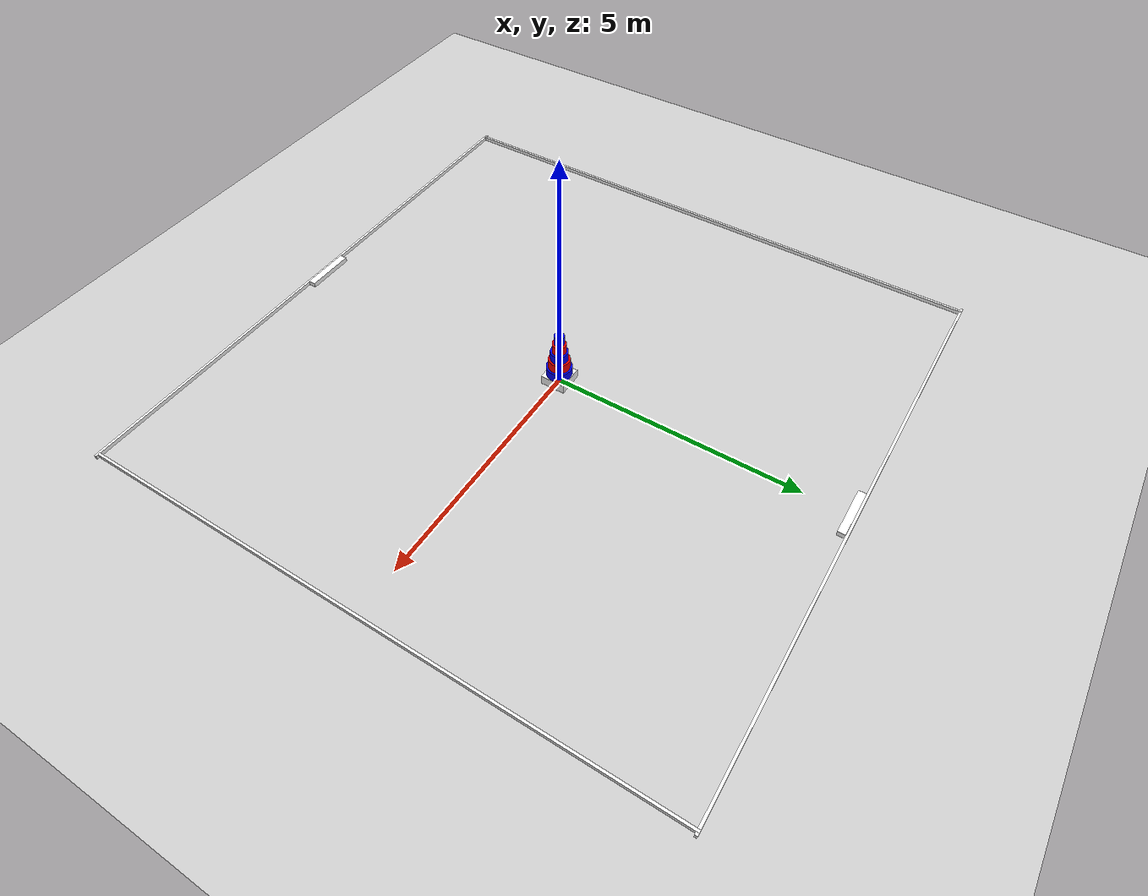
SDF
<?xml version="1.0" ?>
<sdf version='1.7'>
    <world name='default'>
        <!-- ここからコピペ -->
        <light name='sun' type='directional'>
            <cast_shadows>1</cast_shadows>
            <pose>0 0 10 0 -0 0</pose>
            <diffuse>0.8 0.8 0.8 1</diffuse>
            <specular>0.2 0.2 0.2 1</specular>
            <attenuation>
                <range>1000</range>
                <constant>0.9</constant>
                <linear>0.01</linear>
                <quadratic>0.001</quadratic>
            </attenuation>
            <direction>-0.5 0.1 -0.9</direction>
            <spot>
                <inner_angle>0</inner_angle>
                <outer_angle>0</outer_angle>
                <falloff>0</falloff>
            </spot>
        </light>
        <model name='ground_plane'>
            <static>1</static>
            <link name='link'>
                <collision name='collision'>
                    <geometry>
                        <plane>
                            <normal>0 0 1</normal>
                            <size>100 100</size>
                        </plane>
                    </geometry>
                    <surface>
                        <contact>
                            <collide_bitmask>65535</collide_bitmask>
                            <ode/>
                        </contact>
                        <friction>
                            <ode>
                                <mu>100</mu>
                                <mu2>50</mu2>
                            </ode>
                            <torsional>
                                <ode/>
                            </torsional>
                        </friction>
                        <bounce/>
                    </surface>
                    <max_contacts>10</max_contacts>
                </collision>
                <visual name='visual'>
                    <cast_shadows>0</cast_shadows>
                    <geometry>
                        <plane>
                            <normal>0 0 1</normal>
                            <size>100 100</size>
                        </plane>
                    </geometry>
                    <material>
                        <script>
                            <uri>file://media/materials/scripts/gazebo.material</uri>
                            <name>Gazebo/Grey</name>
                        </script>
                    </material>
                </visual>
                <self_collide>0</self_collide>
                <enable_wind>0</enable_wind>
                <kinematic>0</kinematic>
            </link>
        </model>
        <gravity>0 0 -9.8</gravity>
        <magnetic_field>6e-06 2.3e-05 -4.2e-05</magnetic_field>
        <atmosphere type='adiabatic'/>
        <physics type='ode'>
            <max_step_size>0.001</max_step_size>
            <real_time_factor>1</real_time_factor>
            <real_time_update_rate>1000</real_time_update_rate>
        </physics>
        <scene>
            <ambient>0.4 0.4 0.4 1</ambient>
            <background>0.7 0.7 0.7 1</background>
            <shadows>1</shadows>
        </scene>
        <spherical_coordinates>
            <surface_model>EARTH_WGS84</surface_model>
            <latitude_deg>0</latitude_deg>
            <longitude_deg>0</longitude_deg>
            <elevation>0</elevation>
            <heading_deg>0</heading_deg>
        </spherical_coordinates>
        <!-- ここまでコピペ -->
        <model name='Walls'>
            <pose> 0 0 0.04 0 -0 0</pose>
            <link name='Wall_North'>
                <pose> 5.975 0 0 0 0 0</pose>
                <visual name='Wall_North_visual'>
                    <geometry>
                        <box>
                            <size> 0.05 12 0.08 </size>
                        </box>
                    </geometry>
                    <material>
                        <ambient>1 1 1 1</ambient>
                    </material>
                    <meta>
                        <layer>0</layer>
                    </meta>
                </visual>
                <collision name='Wall_North_Collision'>
                    <geometry>
                        <box>
                            <size> 0.05 12 0.08 </size>
                        </box>
                    </geometry>
                    <max_contacts>10</max_contacts>
                    <surface>
                        <contact>
                            <ode/>
                        </contact>
                        <bounce/>
                        <friction>
                            <torsional>
                                <ode/>
                            </torsional>
                            <ode/>
                        </friction>
                    </surface>
                </collision>
            </link>
            <link name='Wall_South'>
                <pose> -5.975 0 0 0 0 0</pose>
                <visual name='Wall_South_visual'>
                    <geometry>
                        <box>
                            <size> 0.05 12 0.08 </size>
                        </box>
                    </geometry>
                    <material>
                        <ambient>1 1 1 1</ambient>
                    </material>
                    <meta>
                        <layer>0</layer>
                    </meta>
                </visual>
                <collision name='Wall_South_Collision'>
                    <geometry>
                        <box>
                            <size> 0.05 12 0.08 </size>
                        </box>
                    </geometry>
                    <max_contacts>10</max_contacts>
                    <surface>
                        <contact>
                            <ode/>
                        </contact>
                        <bounce/>
                        <friction>
                            <torsional>
                                <ode/>
                            </torsional>
                            <ode/>
                        </friction>
                    </surface>
                </collision>
            </link>
            <link name='Wall_East'>
                <pose> 0 -5.975 0 0 0 0</pose>
                <visual name='Wall_East_visual'>
                    <geometry>
                        <box>
                            <size> 12.1 0.05 0.08 </size>
                        </box>
                    </geometry>
                    <material>
                        <ambient>1 1 1 1</ambient>
                    </material>
                    <meta>
                        <layer>0</layer>
                    </meta>
                </visual>
                <collision name='Wall_East_Collision'>
                    <geometry>
                        <box>
                            <size> 12.1 0.05 0.08 </size>
                        </box>
                    </geometry>
                    <max_contacts>10</max_contacts>
                    <surface>
                        <contact>
                            <ode/>
                        </contact>
                        <bounce/>
                        <friction>
                            <torsional>
                                <ode/>
                            </torsional>
                            <ode/>
                        </friction>
                    </surface>
                </collision>
            </link>
            <link name='Wall_West'>
                <pose> 0 5.975 0 0 0 0</pose>
                <visual name='Wall_West_visual'>
                    <geometry>
                        <box>
                            <size> 12.1 0.05 0.08 </size>
                        </box>
                    </geometry>
                    <material>
                        <ambient>1 1 1 1</ambient>
                    </material>
                    <meta>
                        <layer>0</layer>
                    </meta>
                </visual>
                <collision name='Wall_West_Collision'>
                    <geometry>
                        <box>
                            <size> 12.1 0.05 0.08 </size>
                        </box>
                    </geometry>
                    <max_contacts>10</max_contacts>
                    <surface>
                        <contact>
                            <ode/>
                        </contact>
                        <bounce/>
                        <friction>
                            <torsional>
                                <ode/>
                            </torsional>
                            <ode/>
                        </friction>
                    </surface>
                </collision>
            </link>
            <static>1</static>
        </model>
        <model name='LagoriBase'>
            <pose> 0 0 0.1 0 -0 0 </pose>
            <link name='Lagori_Base'>
                <pose> 0 0 0 0 0 0 </pose>
                <visual name='Lagori_Base_Visual'>
                    <geometry>
                        <box>
                            <size> 0.5 0.5 0.2 </size>
                        </box>
                    </geometry>
                    <material>
                        <ambient>1 1 1 1</ambient>
                    </material>
                    <meta>
                        <layer>0</layer>
                    </meta>
                </visual>
                <collision name='Lagori_Base_Collision'>
                    <geometry>
                        <box>
                            <size> 0.5 0.5 0.2 </size>
                        </box>
                    </geometry>
                    <max_contacts>10</max_contacts>
                    <surface>
                        <contact>
                            <ode/>
                        </contact>
                        <bounce/>
                        <friction>
                            <torsional>
                                <ode/>
                            </torsional>
                            <ode/>
                        </friction>
                    </surface>
                </collision>
                <self_collide>0</self_collide>
                <enable_wind>0</enable_wind>
                <kinematic>0</kinematic>
            </link>
            <static>1</static>
        </model>
        <model name='BallRack'>
            <pose> 0 0 0.05 0 0 0 </pose>
            <link name='BallRack_West'>
                <pose> 0 5.875 0 0 0 0 </pose>
                <visual name='BallRack_West_Visual'>
                    <geometry>
                        <box>
                            <size>1 0.15 0.1</size>
                        </box>
                    </geometry>
                    <material>
                        <ambient>1 1 1 1</ambient>
                    </material>
                    <meta>
                        <layer>0</layer>
                    </meta>
                </visual>
                <collision name='BallRack_West_Collision'>
                    <geometry>
                        <box>
                            <size>1 0.15 0.1</size>
                        </box>
                    </geometry>
                    <max_contacts>10</max_contacts>
                    <surface>
                        <contact>
                            <ode/>
                        </contact>
                        <bounce/>
                        <friction>
                            <torsional>
                                <ode/>
                            </torsional>
                            <ode/>
                        </friction>
                    </surface>
                </collision>
            </link>
            <link name='BallRack_East'>
                <pose> 0 -5.875 0 0 0 0 </pose>
                <visual name='BallRack_East_Visual'>
                    <geometry>
                        <box>
                            <size>1 0.15 0.1</size>
                        </box>
                    </geometry>
                    <material>
                        <ambient>1 1 1 1</ambient>
                    </material>
                    <meta>
                        <layer>0</layer>
                    </meta>
                </visual>
                <collision name='BallRack_East_Collision'>
                    <geometry>
                        <box>
                            <size>1 0.15 0.1</size>
                        </box>
                    </geometry>
                    <max_contacts>10</max_contacts>
                    <surface>
                        <contact>
                            <ode/>
                        </contact>
                        <bounce/>
                        <friction>
                            <torsional>
                                <ode/>
                            </torsional>
                            <ode/>
                        </friction>
                    </surface>
                </collision>
            </link>
            <static>1</static>
        </model>
        <model name='Disk_5'>
            <static>1</static>
            <link name='Disk_5'>
                <enable_wind>0</enable_wind>
                <pose> 0 0 0.3 0 0 0 </pose>
                <self_collide>0</self_collide>
                <visual name='Disk_5_Visual'>
                    <geometry>
                        <cylinder>
                            <radius> 0.25 </radius>
                            <length> 0.2 </length>
                        </cylinder>
                    </geometry>
                    <material>
                        <ambient>1 1 1 1</ambient>
                        <diffuse>0 0 1 1</diffuse>
                        <specular> 1 1 1 1 </specular>
                    </material>
                </visual>
                <collision name='Disk_5_Collision'>
                    <geometry>
                        <cylinder>
                            <radius> 0.25 </radius>
                            <length> 0.2 </length>
                        </cylinder>
                    </geometry>
                    <max_contacts>10</max_contacts>
                    <surface>
                        <contact>
                            <ode/>
                        </contact>
                        <bounce/>
                        <friction>
                            <torsional>
                                <ode/>
                            </torsional>
                            <ode/>
                        </friction>
                    </surface>
                </collision>
                <inertial>
                    <inertia>
                        <ixx>0.010417604</ixx>
                        <ixy>0</ixy>
                        <ixz>0</ixz>
                        <iyy>0.010417604</iyy>
                        <iyz>0</iyz>
                        <izz>0.017171875</izz>
                    </inertia>
                    <mass>0.5495</mass>
                </inertial>
            </link>
        </model>
        <model name='Disk_4'>
            <static>1</static>
            <link name='Disk_4'>
                <enable_wind>0</enable_wind>
                <pose> 0 0 0.5 0 0 0 </pose>
                <self_collide>0</self_collide>
                <visual name='Disk_4_Visual'>
                    <geometry>
                        <cylinder>
                            <radius> 0.2125 </radius>
                            <length> 0.2 </length>
                        </cylinder>
                    </geometry>
                    <material>
                        <ambient>1 1 1 1</ambient>
                        <diffuse>1 0 0 1</diffuse>
                        <specular> 1 0 0 1 </specular>
                    </material>
                </visual>
                <collision name='Disk_4_Collision'>
                    <geometry>
                        <cylinder>
                            <radius> 0.2125 </radius>
                            <length> 0.2 </length>
                        </cylinder>
                    </geometry>
                    <max_contacts>10</max_contacts>
                    <surface>
                        <contact>
                            <ode/>
                        </contact>
                        <bounce/>
                        <friction>
                            <torsional>
                                <ode/>
                            </torsional>
                            <ode/>
                        </friction>
                    </surface>
                </collision>
                <inertial>
                    <inertia>
                        <ixx>0.005805292</ixx>
                        <ixy>0</ixy>
                        <ixz>0</ixz>
                        <iyy>0.005805292</iyy>
                        <iyz>0</iyz>
                        <izz>0.008963826</izz>
                    </inertia>
                    <mass>0.39701375</mass>
                </inertial>
            </link>
        </model>
        <model name='Disk_3'>
            <static>1</static>
            <link name='Disk_3'>
                <enable_wind>0</enable_wind>
                <pose> 0 0 0.7 0 0 0 </pose>
                <self_collide>0</self_collide>
                <visual name='Disk_3_Visual'>
                    <geometry>
                        <cylinder>
                            <radius> 0.175 </radius>
                            <length> 0.2 </length>
                        </cylinder>
                    </geometry>
                    <material>
                        <ambient>1 1 1 1</ambient>
                        <diffuse>0 0 1 1</diffuse>
                        <specular> 0 0 1 1 </specular>
                    </material>
                </visual>
                <collision name='Disk_3_Collision'>
                    <geometry>
                        <cylinder>
                            <radius> 0.175 </radius>
                            <length> 0.2 </length>
                        </cylinder>
                    </geometry>
                    <max_contacts>10</max_contacts>
                    <surface>
                        <contact>
                            <ode/>
                        </contact>
                        <bounce/>
                        <friction>
                            <torsional>
                                <ode/>
                            </torsional>
                            <ode/>
                        </friction>
                    </surface>
                </collision>
                <inertial>
                    <inertia>
                        <ixx>0.002959</ixx>
                        <ixy>0</ixy>
                        <ixz>0</ixz>
                        <iyy>0.002959</iyy>
                        <iyz>0</iyz>
                        <izz>0.004122967</izz>
                    </inertia>
                    <mass>0.269255</mass>
                </inertial>
            </link>
        </model>
        <model name='Disk_2'>
            <static>1</static>
            <link name='Disk_2'>
                <enable_wind>0</enable_wind>
                <pose> 0 0 0.9 0 0 0 </pose>
                <self_collide>0</self_collide>
                <visual name='Disk_2_Visual'>
                    <geometry>
                        <cylinder>
                            <radius> 0.1375 </radius>
                            <length> 0.2 </length>
                        </cylinder>
                    </geometry>
                    <material>
                        <ambient>1 1 1 1</ambient>
                        <diffuse>1 0 0 1</diffuse>
                        <specular> 1 0 0 1 </specular>
                    </material>
                </visual>
                <collision name='Disk_2_Collision'>
                    <geometry>
                        <cylinder>
                            <radius> 0.1375 </radius>
                            <length> 0.2 </length>
                        </cylinder>
                    </geometry>
                    <max_contacts>10</max_contacts>
                    <surface>
                        <contact>
                            <ode/>
                        </contact>
                        <bounce/>
                        <friction>
                            <torsional>
                                <ode/>
                            </torsional>
                            <ode/>
                        </friction>
                    </surface>
                </collision>
                <inertial>
                    <inertia>
                        <ixx>0.001339746</ixx>
                        <ixy>0</ixy>
                        <ixz>0</ixz>
                        <iyy>0.001339746</iyy>
                        <iyz>0</iyz>
                        <izz>0.001571334</izz>
                    </inertia>
                    <mass>0.16622375</mass>
                </inertial>
            </link>
        </model>
        <model name='Disk_1'>
            <static>1</static>
            <link name='Disk_1'>
                <enable_wind>0</enable_wind>
                <pose> 0 0 1.1 0 0 0 </pose>
                <self_collide>0</self_collide>
                <visual name='Disk_1_Visual'>
                    <geometry>
                        <cylinder>
                            <radius> 0.1 </radius>
                            <length> 0.2 </length>
                        </cylinder>
                    </geometry>
                    <material>
                        <ambient>1 1 1 1</ambient>
                        <diffuse>0 0 1 1</diffuse>
                        <specular> 0 0 1 1 </specular>
                    </material>
                </visual>
                <collision name='Disk_1_Collision'>
                    <geometry>
                        <cylinder>
                            <radius> 0.1 </radius>
                            <length> 0.2 </length>
                        </cylinder>
                    </geometry>
                    <max_contacts>10</max_contacts>
                    <surface>
                        <contact>
                            <ode/>
                        </contact>
                        <bounce/>
                        <friction>
                            <torsional>
                                <ode/>
                            </torsional>
                            <ode/>
                        </friction>
                    </surface>
                </collision>
                <inertial>
                    <inertia>
                        <ixx>0.000512867</ixx>
                        <ixy>0</ixy>
                        <ixz>0</ixz>
                        <iyy>0.000512867</iyy>
                        <iyz>0</iyz>
                        <izz>0.0004396</izz>
                    </inertia>
                    <mass>0.08792</mass>
                </inertial>
            </link>
        </model>
    </world>
</sdf>
